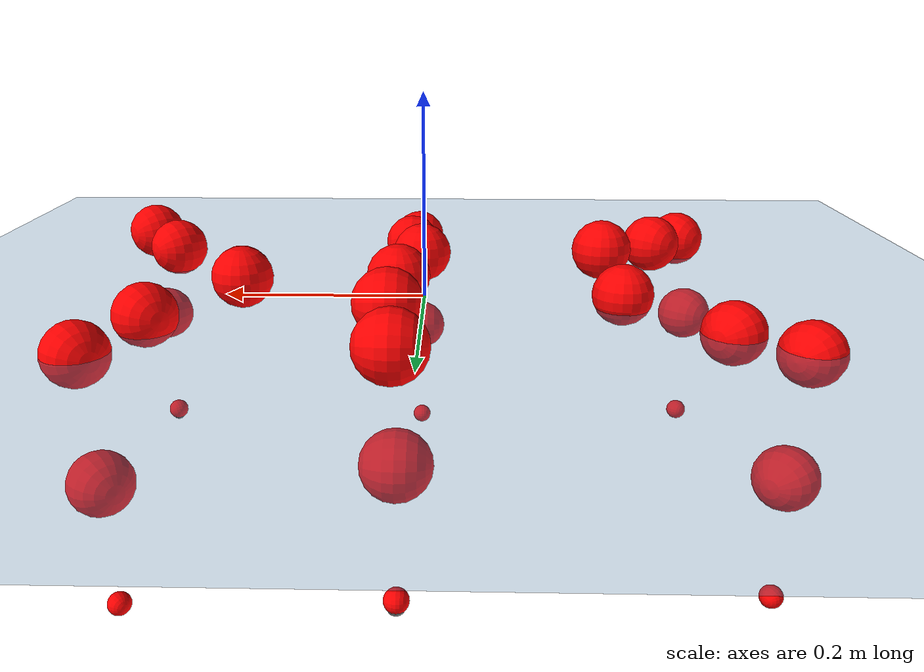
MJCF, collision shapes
<mujoco model="Golem">
  <compiler angle="radian" assetdir="assets" balanceinertia="true" inertiafromgeom="false"/>

  <option timestep="0.005" density="1.2" viscosity="2e-05"/>

  <size nkey="1"/>

  <visual>
    <quality shadowsize="8192"/>
    <map shadowclip="0.5"/>
  </visual>

  <default>
    <default class="/">
      <joint armature="0.01" damping="0.01" frictionloss="0.01"/>
      <geom contype="0" conaffinity="0" group="1" solref="-1000 -80"/>
      <site size="0.01 0.005 0.005" group="5"/>
      <general forcelimited="true" biastype="affine" gainprm="25" biasprm="0 -25 -0.5"/>
      <default class="visual">
        <geom type="mesh" group="2"/>
      </default>
      <default class="collision">
        <geom group="3"/>
      </default>
      <default class="foot">
        <geom size="0.01 0 0" condim="6" group="4" priority="1" solimp="0.015 1 0.01"/>
      </default>
      <default class="reward_collision_sphere">
        <geom group="5" rgba="1 0 0 1"/>
      </default>
    </default>
  </default>

  <asset>
    <texture type="skybox" colorspace="auto" name="//unnamed_texture_0" builtin="gradient" rgb1="0.95 0.95 0.95" rgb2="0.95 0.95 0.95" width="100" height="600"/>
    <texture type="2d" colorspace="auto" name="texplane" builtin="checker" rgb1="0.345 0.575 0.748" rgb2="0.345 0.575 0.748" markrgb="1 1 1" width="512" height="512"/>
    <material name="MatPlane" class="/" texture="texplane" texuniform="true" texrepeat="2 2" specular="0.9"/>
    <mesh name="body" class="/" file="body.stl" scale="0.001 0.001 0.001"/>
    <mesh name="coxa" class="/" file="coxa.stl" scale="0.001 0.001 0.001"/>
    <mesh name="femur" class="/" file="femur.stl" scale="0.001 0.001 0.001"/>
    <mesh name="tibia" class="/" file="tibia.stl" scale="0.001 0.001 0.001"/>
    <mesh name="tarsus" class="/" file="tarsus.stl" scale="0.001 0.001 0.001"/>
  </asset>

  <worldbody>
    <geom name="floor" class="/" size="100 100 0.125" type="plane" group="0" material="MatPlane"/>
    <light name="toplight_shadow" class="/" pos="0 0 5" dir="0.0990148 0.0990148 -0.990148" type="directional" ambient="0.04 0.04 0.04" diffuse="0.55 0.55 0.55" specular="0.12 0.12 0.12"/>
    <light name="toplight_fill" class="/" pos="0 0 5" dir="0.0990148 0.0990148 -0.990148" type="directional" castshadow="false" ambient="0.04 0.04 0.04" diffuse="0.3 0.3 0.3" specular="0.08 0.08 0.08"/>
    <body name="trunk" pos="0.00495638 -0.00528587 0.00644047" quat="0.999995 0.00019414 0.0019037 -0.00260507">
      <inertial pos="-0.0130202 -0.00647133 0.00144854" quat="0.9987 0.0211837 -0.0462643 -0.00300608" mass="1.29321" diaginertia="0.0148953 0.00132764 3.28236e-05"/>
      <joint name="//unnamed_joint_0" type="free"/>
      <geom name="//unnamed_geom_1" class="/" pos="0 0 0.0221179" quat="1 0 0 0" type="mesh" rgba="0.9 0.9 0.9 1" mesh="body"/>
      <site name="imu" class="/" pos="0.13693 -0.0240572 0.113304" size="0.0074763"/>
      <camera name="track" class="/" pos="0 -1.41895 0" quat="0.707107 0.707107 0 0" mode="trackcom"/>
      <camera name="ego_camera" class="/" pos="0.154417 0 0.0345592" quat="-0.5 -0.5 0.5 0.5"/>
      <body name="coxa_RR" pos="-0.211104 -0.0599886 0.0317039" quat="0.382918 -7.14151e-06 0.000304453 -0.923782">
        <inertial pos="0.000212225 0.0103911 0.000457279" quat="0.999984 0.00305136 0.000991961 0.00468238" mass="0.099344" diaginertia="0.0267411 0.00228492 4.96663e-05"/>
        <joint name="coxa_joint_RR" class="/" pos="0 0 0" axis="0.0879332 0.00801102 -0.996094" range="-2.907 3.14414" armature="0.00472309" damping="0.0531413" frictionloss="0.0076295"/>
        <geom name="//unnamed_geom_2" class="/" type="mesh" rgba="0.2 0.2 0.2 1" mesh="coxa"/>
        <geom name="//unnamed_geom_3" class="reward_collision_sphere" size="0.0299052" pos="-0.0356347 0 0"/>
        <body name="femur_RR" pos="0.0557073 0.00117262 -0.0101178" quat="0.498946 -0.49851 0.50472 0.497793">
          <inertial pos="-0.00646878 -0.00151123 0.0107278" quat="0.999945 -0.00810979 -0.00451568 -0.00497517" mass="0.105582" diaginertia="0.022376 0.00207492 5.09137e-05"/>
          <joint name="femur_joint_RR" class="/" pos="0 0 0" axis="0.034659 0.0661601 -0.997207" stiffness="0.0147713" range="-3.12695 2.98654" armature="0.00734053" damping="0.0060154" frictionloss="0.00407837"/>
          <geom name="//unnamed_geom_4" class="/" type="mesh" rgba="0.9 0.9 0.9 1" mesh="femur"/>
          <geom name="//unnamed_geom_5" class="reward_collision_sphere" size="0.0299052"/>
          <body name="tibia_RR" pos="0.0103334 -0.0767776 0.0175491" quat="-1.72009e-06 1 -0.000149924 -0.000175553">
            <inertial pos="0.00307251 0.0163652 -0.00323611" quat="0.996599 0.0336104 0.0272192 -0.0701375" mass="0.0833201" diaginertia="0.0199511 0.00187749 4.68629e-05"/>
            <joint name="tibia_joint_RR" class="/" pos="0 0 0" axis="-0.0524258 0.0283015 0.998224" range="-3.37515 3.2694" armature="0.00757835" damping="0" frictionloss="0.0105654"/>
            <geom name="//unnamed_geom_6" class="/" type="mesh" rgba="0.2 0.2 0.2 1" mesh="tibia"/>
            <geom name="//unnamed_geom_7" class="reward_collision_sphere" size="0.0299052"/>
            <body name="tarsus_RR" pos="0.0935364 0.0165233 0.0100412" quat="0.999986 -0.000226147 -0.00376973 0.00367034">
              <inertial pos="0.071903 0.00178541 0.0119346" quat="0.437017 0.533587 0.524703 0.498987" mass="0.0767395" diaginertia="0.0273438 0.0017136 6.42579e-05"/>
              <joint name="tarsus_joint_RR" class="/" pos="0 0 0" axis="0.00369641 -0.00724274 0.999967" stiffness="0.0317095" range="-2.90466 3.24238" armature="0.0105701" damping="0" frictionloss="0.0024914"/>
              <geom name="//unnamed_geom_8" class="/" type="mesh" rgba="0.9 0.9 0.9 1" mesh="tarsus"/>
              <geom name="foot_1" class="foot" size="0.00466411" pos="0.133036 0 0" quat="0 -0.707107 0 0.707107"/>
              <geom name="//unnamed_geom_10" class="reward_collision_sphere" size="0.0299052"/>
              <geom name="//unnamed_geom_11" class="reward_collision_sphere" size="0.0112145" pos="0.127691 0 0"/>
              <site name="foot_1" class="foot" pos="0.133036 0 0" quat="0 -0.707107 0 0.707107" size="0.0074763"/>
            </body>
          </body>
        </body>
      </body>
      <body name="coxa_RM" pos="-0.000258996 -0.0840682 0.0242962" quat="0.712095 0.00534991 0.000986848 -0.702062">
        <inertial pos="-0.0121835 -0.00176172 0.0144004" quat="0.999999 1.62896e-05 0.00121401 0.000390431" mass="0.0905639" diaginertia="0.022593 0.00148486 5.11487e-05"/>
        <joint name="coxa_joint_RM" class="/" pos="0 0 0" axis="-0.00810388 -0.028148 -0.999571" range="-3.20516 3.16121" armature="0.00209688" damping="0.0377384" frictionloss="0.00444282"/>
        <geom name="//unnamed_geom_12" class="/" type="mesh" rgba="0.2 0.2 0.2 1" mesh="coxa"/>
        <geom name="//unnamed_geom_13" class="reward_collision_sphere" size="0.0299052" pos="-0.0356347 0 0"/>
        <body name="femur_RM" pos="0.0742577 0.0145492 -0.0153899" quat="0.499648 -0.498693 0.501447 0.500208">
          <inertial pos="-0.0162794 0.0109106 -0.00140857" quat="0.999246 -0.0226425 0.0289777 0.0124686" mass="0.0988417" diaginertia="0.0335178 0.00213217 7.06833e-05"/>
          <joint name="femur_joint_RM" class="/" pos="0 0 0" axis="0.062593 0.00300466 -0.998035" range="-3.12846 3.44929" armature="0.00479414" damping="0" frictionloss="0.0113093"/>
          <geom name="//unnamed_geom_14" class="/" type="mesh" rgba="0.9 0.9 0.9 1" mesh="femur"/>
          <geom name="//unnamed_geom_15" class="reward_collision_sphere" size="0.0299052"/>
          <body name="tibia_RM" pos="0.0114005 -0.0793968 -0.00498837" quat="-0.00446947 0.999984 0.00309029 -0.00127514">
            <inertial pos="0.0111947 -0.0176032 -0.0034078" quat="0.998511 0.053201 0.00486906 0.0109909" mass="0.0880665" diaginertia="0.0268754 0.00201063 5.78209e-05"/>
            <joint name="tibia_joint_RM" class="/" pos="0 0 0" axis="0.0218904 0.0167105 0.999621" stiffness="0.0397741" range="-3.19015 2.91177" armature="0.0102124" damping="0" frictionloss="0.00746126"/>
            <geom name="//unnamed_geom_16" class="/" type="mesh" rgba="0.2 0.2 0.2 1" mesh="tibia"/>
            <geom name="//unnamed_geom_17" class="reward_collision_sphere" size="0.0299052"/>
            <body name="tarsus_RM" pos="0.121981 0.00925278 0.00119282" quat="0.999999 0.000853108 -0.000728455 0.000347614">
              <inertial pos="0.056798 0.00411659 -0.00704989" quat="0.501947 0.508333 0.498493 0.491072" mass="0.0653019" diaginertia="0.0224434 0.00167397 3.84102e-05"/>
              <joint name="tarsus_joint_RM" class="/" pos="0 0 0" axis="-0.0233867 -0.0235639 0.999449" stiffness="0.0237714" range="-2.87841 3.41583" armature="0.00729472" damping="0" frictionloss="0.0123609"/>
              <geom name="//unnamed_geom_18" class="/" type="mesh" rgba="0.9 0.9 0.9 1" mesh="tarsus"/>
              <geom name="foot_2" class="foot" size="0.00426115" pos="0.133036 0 0" quat="0 -0.707107 0 0.707107"/>
              <geom name="//unnamed_geom_20" class="reward_collision_sphere" size="0.0299052"/>
              <geom name="//unnamed_geom_21" class="reward_collision_sphere" size="0.0112145" pos="0.127691 0 0"/>
              <site name="foot_2" class="foot" pos="0.133036 0 0" quat="0 -0.707107 0 0.707107" size="0.0074763"/>
            </body>
          </body>
        </body>
      </body>
      <body name="coxa_RF" pos="0.210078 -0.0454261 0.00759016" quat="0.925153 -0.00229619 0.000155878 -0.379586">
        <inertial pos="0.00611075 0.0157541 -0.0129292" quat="0.997004 0.00690142 0.0763771 -0.0101225" mass="0.112797" diaginertia="0.0301161 0.00208002 5.64494e-05"/>
        <joint name="coxa_joint_RF" class="/" pos="0 0 0" axis="-0.0423938 -0.0559279 -0.997534" range="-3.46143 2.93853" armature="0.0125211" damping="0.0548205" frictionloss="0.00825453"/>
        <geom name="//unnamed_geom_22" class="/" type="mesh" rgba="0.2 0.2 0.2 1" mesh="coxa"/>
        <geom name="//unnamed_geom_23" class="reward_collision_sphere" size="0.0299052" pos="-0.0356347 0 0"/>
        <body name="femur_RF" pos="0.0763392 0.00957092 0.00997123" quat="0.49994 -0.50019 0.500026 0.499845">
          <inertial pos="0.0125935 -0.0156235 -0.00278179" quat="0.999381 0.0307295 0.00871268 0.0147757" mass="0.078883" diaginertia="0.0209302 0.00139772 4.26341e-05"/>
          <joint name="femur_joint_RF" class="/" pos="0 0 0" axis="0.0174933 -0.0128212 -0.999765" range="-3.07077 3.33114" armature="0.00696715" damping="0.0265171" frictionloss="0.0110676"/>
          <geom name="//unnamed_geom_24" class="/" type="mesh" rgba="0.9 0.9 0.9 1" mesh="femur"/>
          <geom name="//unnamed_geom_25" class="reward_collision_sphere" size="0.0299052"/>
          <body name="tibia_RF" pos="-0.00511273 -0.0667398 -0.00898975" quat="-0.000756629 1 0.000104175 0.000167949">
            <inertial pos="-0.00085898 0.000473409 0.0170604" quat="0.997376 -0.010975 0.0678813 0.0226391" mass="0.0868798" diaginertia="0.0278496 0.00233348 4.47249e-05"/>
            <joint name="tibia_joint_RF" class="/" pos="0 0 0" axis="-0.0419027 0.00522148 0.999108" stiffness="0.0228233" range="-3.09433 2.93321" armature="0.0064836" damping="0" frictionloss="0.00354878"/>
            <geom name="//unnamed_geom_26" class="/" type="mesh" rgba="0.2 0.2 0.2 1" mesh="tibia"/>
            <geom name="//unnamed_geom_27" class="reward_collision_sphere" size="0.0299052"/>
            <body name="tarsus_RF" pos="0.100709 -0.00134398 -0.000299611" quat="0.999979 0.00558436 -0.00190872 0.0026126">
              <inertial pos="0.0806885 -0.00565248 -0.00721171" quat="0.493825 0.505869 0.495104 0.50508" mass="0.0729158" diaginertia="0.0222289 0.00184367 5.14214e-05"/>
              <joint name="tarsus_joint_RF" class="/" pos="0 0 0" axis="0.0485201 -0.0244825 0.998522" stiffness="0.0401541" range="-3.40593 3.13583" armature="0.00608233" damping="0.0343711" frictionloss="0.00548156"/>
              <geom name="//unnamed_geom_28" class="/" type="mesh" rgba="0.9 0.9 0.9 1" mesh="tarsus"/>
              <geom name="foot_3" class="foot" size="0.00756715" pos="0.133036 0 0" quat="0 -0.707107 0 0.707107"/>
              <geom name="//unnamed_geom_30" class="reward_collision_sphere" size="0.0299052"/>
              <geom name="//unnamed_geom_31" class="reward_collision_sphere" size="0.0112145" pos="0.127691 0 0"/>
              <site name="foot_3" class="foot" pos="0.133036 0 0" quat="0 -0.707107 0 0.707107" size="0.0074763"/>
            </body>
          </body>
        </body>
      </body>
      <body name="coxa_LR" pos="-0.224691 0.0568098 0.00413058" quat="0.380535 -0.00165441 0.00207279 0.924763">
        <inertial pos="0.0125276 0.0132546 -0.000267013" quat="0.997907 0.016766 -0.0219571 0.0584738" mass="0.0904666" diaginertia="0.0213964 0.00240525 6.93115e-05"/>
        <joint name="coxa_joint_LR" class="/" pos="0 0 0" axis="0.00344676 0.00623594 -0.999975" range="-2.92753 2.95358" armature="0.00413898" damping="0.0142193" frictionloss="0.00636743"/>
        <geom name="//unnamed_geom_32" class="/" type="mesh" rgba="0.2 0.2 0.2 1" mesh="coxa"/>
        <geom name="//unnamed_geom_33" class="reward_collision_sphere" size="0.0299052" pos="-0.0356347 0 0"/>
        <body name="femur_LR" pos="0.0777793 0.0120749 -0.0124422" quat="0.502932 -0.498794 0.499131 0.499131">
          <inertial pos="-0.00424016 0.0177981 -0.00537034" quat="0.999995 0.0017312 -0.00263944 -4.03712e-05" mass="0.085194" diaginertia="0.028376 0.00152222 5.95364e-05"/>
          <joint name="femur_joint_LR" class="/" pos="0 0 0" axis="0.00266596 0.00145626 0.999995" stiffness="0.0280351" range="-3.43993 3.14197" armature="0.00885735" damping="0.093384" frictionloss="0.00756235"/>
          <geom name="//unnamed_geom_34" class="/" type="mesh" rgba="0.9 0.9 0.9 1" mesh="femur"/>
          <geom name="//unnamed_geom_35" class="reward_collision_sphere" size="0.0299052"/>
          <body name="tibia_LR" pos="0.00615191 -0.0657608 0.0172733" quat="-0.00351172 0.999987 -0.00318431 0.00211134">
            <inertial pos="-0.0106937 0.0132041 0.0105031" quat="0.99737 0.0517398 -0.00106198 -0.0507344" mass="0.0729522" diaginertia="0.0255849 0.00188884 4.59703e-05"/>
            <joint name="tibia_joint_LR" class="/" pos="0 0 0" axis="0.0232499 -0.0310286 -0.999248" range="-3.34661 2.8339" armature="0.00482676" damping="0.0590183" frictionloss="0.00770509"/>
            <geom name="//unnamed_geom_36" class="/" type="mesh" rgba="0.2 0.2 0.2 1" mesh="tibia"/>
            <geom name="//unnamed_geom_37" class="reward_collision_sphere" size="0.0299052"/>
            <body name="tarsus_LR" pos="0.115971 -0.00105114 0.0171887" quat="0.99998 0.00211854 0.00437715 0.00394225">
              <inertial pos="0.0763712 0.0163382 0.0150302" quat="0.514677 0.473871 0.483322 0.526265" mass="0.079986" diaginertia="0.0207768 0.00199571 5.76853e-05"/>
              <joint name="tarsus_joint_LR" class="/" pos="0 0 0" axis="0.0138311 -0.0741281 -0.997153" stiffness="0.073153" range="-2.96132 3.35704" armature="0.0123752" damping="0.0688322" frictionloss="0.0115538"/>
              <geom name="//unnamed_geom_38" class="/" type="mesh" rgba="0.9 0.9 0.9 1" mesh="tarsus"/>
              <geom name="foot_4" class="foot" size="0.0025655" pos="0.133036 0 0" quat="0.707107 0 -0.707107 0"/>
              <geom name="//unnamed_geom_40" class="reward_collision_sphere" size="0.0299052"/>
              <geom name="//unnamed_geom_41" class="reward_collision_sphere" size="0.0112145" pos="0.127691 0 0"/>
              <site name="foot_4" class="foot" pos="0.133036 0 0" quat="0.707107 0 -0.707107 0" size="0.0074763"/>
            </body>
          </body>
        </body>
      </body>
      <body name="coxa_LM" pos="0.0169619 0.0927743 0.0302549" quat="0.707253 0.000209955 -0.000121325 0.70696">
        <inertial pos="0.00793595 0.0124306 -0.00812216" quat="0.997331 0.0240434 -0.0370012 -0.0581664" mass="0.0771775" diaginertia="0.0169434 0.0014128 3.8736e-05"/>
        <joint name="coxa_joint_LM" class="/" pos="0 0 0" axis="0.0818715 -0.0273467 -0.996268" stiffness="0.0403144" range="-3.18166 3.01515" armature="0.00501374" damping="0" frictionloss="0.00333161"/>
        <geom name="//unnamed_geom_42" class="/" type="mesh" rgba="0.2 0.2 0.2 1" mesh="coxa"/>
        <geom name="//unnamed_geom_43" class="reward_collision_sphere" size="0.0299052" pos="-0.0356347 0 0"/>
        <body name="femur_LM" pos="0.0845507 -0.000422104 0.0125533" quat="0.500064 -0.499969 0.50005 0.499916">
          <inertial pos="-0.0123527 0.00480815 0.00658951" quat="0.997919 0.0130757 -0.00449845 0.0629868" mass="0.0621653" diaginertia="0.0235659 0.00119666 4.50245e-05"/>
          <joint name="femur_joint_LM" class="/" pos="0 0 0" axis="-0.00433738 -0.00467142 0.99998" range="-3.2784 3.06859" armature="0.00859291" damping="0" frictionloss="0.0119858"/>
          <geom name="//unnamed_geom_44" class="/" type="mesh" rgba="0.9 0.9 0.9 1" mesh="femur"/>
          <geom name="//unnamed_geom_45" class="reward_collision_sphere" size="0.0299052"/>
          <body name="tibia_LM" pos="0.00606739 -0.0828513 0.00870856" quat="-0.000656053 0.999976 -0.00317631 -0.00617763">
            <inertial pos="-0.0113207 -0.00218825 0.0144126" quat="0.997166 -0.0127454 -0.0531748 0.0516626" mass="0.0918828" diaginertia="0.0258857 0.00150428 5.67004e-05"/>
            <joint name="tibia_joint_LM" class="/" pos="0 0 0" axis="-0.000247644 -0.0517683 -0.998659" stiffness="0.0776238" range="-3.11787 3.1278" armature="0.00782659" damping="0" frictionloss="0.0125517"/>
            <geom name="//unnamed_geom_46" class="/" type="mesh" rgba="0.2 0.2 0.2 1" mesh="tibia"/>
            <geom name="//unnamed_geom_47" class="reward_collision_sphere" size="0.0299052"/>
            <body name="tarsus_LM" pos="0.10506 -0.0142468 -0.00235723" quat="0.999973 0.000112726 -0.0030955 -0.00658892">
              <inertial pos="0.0721445 0.00118603 -0.0102376" quat="0.48753 0.464961 0.478977 0.562767" mass="0.0716074" diaginertia="0.019416 0.00208126 5.1402e-05"/>
              <joint name="tarsus_joint_LM" class="/" pos="0 0 0" axis="0.0241104 -0.081523 -0.99638" range="-3.21591 3.21016" armature="0.00902578" damping="0.00806544" frictionloss="0.0018737"/>
              <geom name="//unnamed_geom_48" class="/" type="mesh" rgba="0.9 0.9 0.9 1" mesh="tarsus"/>
              <geom name="foot_5" class="foot" size="0.00855613" pos="0.133036 0 0" quat="0.707107 0 -0.707107 0"/>
              <geom name="//unnamed_geom_50" class="reward_collision_sphere" size="0.0299052"/>
              <geom name="//unnamed_geom_51" class="reward_collision_sphere" size="0.0112145" pos="0.127691 0 0"/>
              <site name="foot_5" class="foot" pos="0.133036 0 0" quat="0.707107 0 -0.707107 0" size="0.0074763"/>
            </body>
          </body>
        </body>
      </body>
      <body name="coxa_LF" pos="0.196143 0.0595745 0.0212491" quat="0.923251 0.000265763 0.00241259 0.38419">
        <inertial pos="-0.000455349 -0.000424336 -0.0144449" quat="0.997967 -0.00384496 0.00993449 0.0628434" mass="0.098527" diaginertia="0.0290532 0.00150022 5.83348e-05"/>
        <joint name="coxa_joint_LF" class="/" pos="0 0 0" axis="-0.0682362 -0.00549181 -0.997654" range="-3.03925 3.14773" armature="0.0131333" damping="0.0206865" frictionloss="0.000883309"/>
        <geom name="//unnamed_geom_52" class="/" type="mesh" rgba="0.2 0.2 0.2 1" mesh="coxa"/>
        <geom name="//unnamed_geom_53" class="reward_collision_sphere" size="0.0299052" pos="-0.0356347 0 0"/>
        <body name="femur_LF" pos="0.0689477 0.00154211 -0.0130941" quat="0.500733 -0.498141 0.499736 0.501383">
          <inertial pos="0.0172794 0.000883782 -0.0177452" quat="0.999858 -0.00240986 -0.0144784 0.00830883" mass="0.0903736" diaginertia="0.0184765 0.00164567 4.71638e-05"/>
          <joint name="femur_joint_LF" class="/" pos="0 0 0" axis="0.000573353 -0.000171258 1" range="-3.19045 3.19938" armature="0.00336649" damping="0" frictionloss="0.00512654"/>
          <geom name="//unnamed_geom_54" class="/" type="mesh" rgba="0.9 0.9 0.9 1" mesh="femur"/>
          <geom name="//unnamed_geom_55" class="reward_collision_sphere" size="0.0299052"/>
          <body name="tibia_LF" pos="0.0153525 -0.0712466 0.0109566" quat="0.00431389 0.999985 -0.0019635 -0.00277693">
            <inertial pos="0.0089096 0.0171328 0.00160899" quat="0.999999 -0.000866431 -0.000155126 0.000768319" mass="0.0914926" diaginertia="0.0349537 0.00221422 5.45526e-05"/>
            <joint name="tibia_joint_LF" class="/" pos="0 0 0" axis="-0.0108582 -0.00233945 -0.999938" stiffness="0.0364143" range="-3.10605 3.05211" armature="0.0023478" damping="0.0593296" frictionloss="0.00673354"/>
            <geom name="//unnamed_geom_56" class="/" type="mesh" rgba="0.2 0.2 0.2 1" mesh="tibia"/>
            <geom name="//unnamed_geom_57" class="reward_collision_sphere" size="0.0299052"/>
            <body name="tarsus_LF" pos="0.118094 0.00138571 -0.0163938" quat="0.999997 0.00105703 -0.00224818 -0.000276511">
              <inertial pos="0.0664339 -0.010502 0.00490791" quat="0.516474 0.4765 0.466855 0.536888" mass="0.11817" diaginertia="0.0257452 0.0025543 5.31997e-05"/>
              <joint name="tarsus_joint_LF" class="/" pos="0 0 0" axis="0.0262767 0.0347242 -0.999051" range="-3.25755 3.1383" armature="0.00183686" damping="0.0713724" frictionloss="0.0137578"/>
              <geom name="//unnamed_geom_58" class="/" type="mesh" rgba="0.9 0.9 0.9 1" mesh="tarsus"/>
              <geom name="foot_6" class="foot" size="0.00519214" pos="0.133036 0 0" quat="0.707107 0 -0.707107 0"/>
              <geom name="//unnamed_geom_60" class="reward_collision_sphere" size="0.0299052"/>
              <geom name="//unnamed_geom_61" class="reward_collision_sphere" size="0.0112145" pos="0.127691 0 0"/>
              <site name="foot_6" class="foot" pos="0.133036 0 0" quat="0.707107 0 -0.707107 0" size="0.0074763"/>
            </body>
          </body>
        </body>
      </body>
    </body>
  </worldbody>

  <contact>
    <pair class="/" geom1="floor" geom2="foot_1" name="//unnamed_contact_0"/>
    <pair class="/" geom1="floor" geom2="foot_2" name="//unnamed_contact_1"/>
    <pair class="/" geom1="floor" geom2="foot_3" name="//unnamed_contact_2"/>
    <pair class="/" geom1="floor" geom2="foot_4" name="//unnamed_contact_3"/>
    <pair class="/" geom1="floor" geom2="foot_5" name="//unnamed_contact_4"/>
    <pair class="/" geom1="floor" geom2="foot_6" name="//unnamed_contact_5"/>
  </contact>

  <actuator>
    <general name="coxa_joint_RR" class="/" joint="coxa_joint_RR" forcerange="-7.08569 7.08569" gainprm="11.9128" biasprm="0 -11.9128 -0.443795"/>
    <general name="femur_joint_RR" class="/" joint="femur_joint_RR" forcerange="-6.22676 6.22676" gainprm="11.9128" biasprm="0 -11.9128 -0.443795"/>
    <general name="tibia_joint_RR" class="/" joint="tibia_joint_RR" forcerange="-6.89753 6.89753" gainprm="11.9128" biasprm="0 -11.9128 -0.443795"/>
    <general name="tarsus_joint_RR" class="/" joint="tarsus_joint_RR" forcerange="-2.45124 2.45124" gainprm="11.9128" biasprm="0 -11.9128 -0.443795"/>
    <general name="coxa_joint_RM" class="/" joint="coxa_joint_RM" forcerange="-4.65964 4.65964" gainprm="11.9128" biasprm="0 -11.9128 -0.443795"/>
    <general name="femur_joint_RM" class="/" joint="femur_joint_RM" forcerange="-5.32245 5.32245" gainprm="11.9128" biasprm="0 -11.9128 -0.443795"/>
    <general name="tibia_joint_RM" class="/" joint="tibia_joint_RM" forcerange="-5.26083 5.26083" gainprm="11.9128" biasprm="0 -11.9128 -0.443795"/>
    <general name="tarsus_joint_RM" class="/" joint="tarsus_joint_RM" forcerange="-2.10589 2.10589" gainprm="11.9128" biasprm="0 -11.9128 -0.443795"/>
    <general name="coxa_joint_RF" class="/" joint="coxa_joint_RF" forcerange="-3.36152 3.36152" gainprm="11.9128" biasprm="0 -11.9128 -0.443795"/>
    <general name="femur_joint_RF" class="/" joint="femur_joint_RF" forcerange="-8.69199 8.69199" gainprm="11.9128" biasprm="0 -11.9128 -0.443795"/>
    <general name="tibia_joint_RF" class="/" joint="tibia_joint_RF" forcerange="-3.10408 3.10408" gainprm="11.9128" biasprm="0 -11.9128 -0.443795"/>
    <general name="tarsus_joint_RF" class="/" joint="tarsus_joint_RF" forcerange="-7.93101 7.93101" gainprm="11.9128" biasprm="0 -11.9128 -0.443795"/>
    <general name="coxa_joint_LR" class="/" joint="coxa_joint_LR" forcerange="-7.68617 7.68617" gainprm="11.9128" biasprm="0 -11.9128 -0.443795"/>
    <general name="femur_joint_LR" class="/" joint="femur_joint_LR" forcerange="-4.97404 4.97404" gainprm="11.9128" biasprm="0 -11.9128 -0.443795"/>
    <general name="tibia_joint_LR" class="/" joint="tibia_joint_LR" forcerange="-5.56036 5.56036" gainprm="11.9128" biasprm="0 -11.9128 -0.443795"/>
    <general name="tarsus_joint_LR" class="/" joint="tarsus_joint_LR" forcerange="-7.70143 7.70143" gainprm="11.9128" biasprm="0 -11.9128 -0.443795"/>
    <general name="coxa_joint_LM" class="/" joint="coxa_joint_LM" forcerange="-6.52894 6.52894" gainprm="11.9128" biasprm="0 -11.9128 -0.443795"/>
    <general name="femur_joint_LM" class="/" joint="femur_joint_LM" forcerange="-7.80735 7.80735" gainprm="11.9128" biasprm="0 -11.9128 -0.443795"/>
    <general name="tibia_joint_LM" class="/" joint="tibia_joint_LM" forcerange="-7.15802 7.15802" gainprm="11.9128" biasprm="0 -11.9128 -0.443795"/>
    <general name="tarsus_joint_LM" class="/" joint="tarsus_joint_LM" forcerange="-6.61547 6.61547" gainprm="11.9128" biasprm="0 -11.9128 -0.443795"/>
    <general name="coxa_joint_LF" class="/" joint="coxa_joint_LF" forcerange="-8.42965 8.42965" gainprm="11.9128" biasprm="0 -11.9128 -0.443795"/>
    <general name="femur_joint_LF" class="/" joint="femur_joint_LF" forcerange="-7.69165 7.69165" gainprm="11.9128" biasprm="0 -11.9128 -0.443795"/>
    <general name="tibia_joint_LF" class="/" joint="tibia_joint_LF" forcerange="-3.23906 3.23906" gainprm="11.9128" biasprm="0 -11.9128 -0.443795"/>
    <general name="tarsus_joint_LF" class="/" joint="tarsus_joint_LF" forcerange="-7.08133 7.08133" gainprm="11.9128" biasprm="0 -11.9128 -0.443795"/>
  </actuator>

  <sensor>
    <gyro site="imu" name="imu_angular_velocity"/>
    <velocimeter site="imu" name="imu_linear_velocity"/>
    <framelinvel objtype="site" objname="foot_1" name="foot_1_global_linear_velocity"/>
    <framelinvel objtype="site" objname="foot_2" name="foot_2_global_linear_velocity"/>
    <framelinvel objtype="site" objname="foot_3" name="foot_3_global_linear_velocity"/>
    <framelinvel objtype="site" objname="foot_4" name="foot_4_global_linear_velocity"/>
    <framelinvel objtype="site" objname="foot_5" name="foot_5_global_linear_velocity"/>
    <framelinvel objtype="site" objname="foot_6" name="foot_6_global_linear_velocity"/>
  </sensor>

  <keyframe>
    <key name="home" qpos="0 0 0.1457 1 0 0 0 0 0 0 0 0 0 0 0 0 0 0 0 0 0 0 0 0 0 0 0 0 0 0 0"/>
  </keyframe>
</mujoco>
